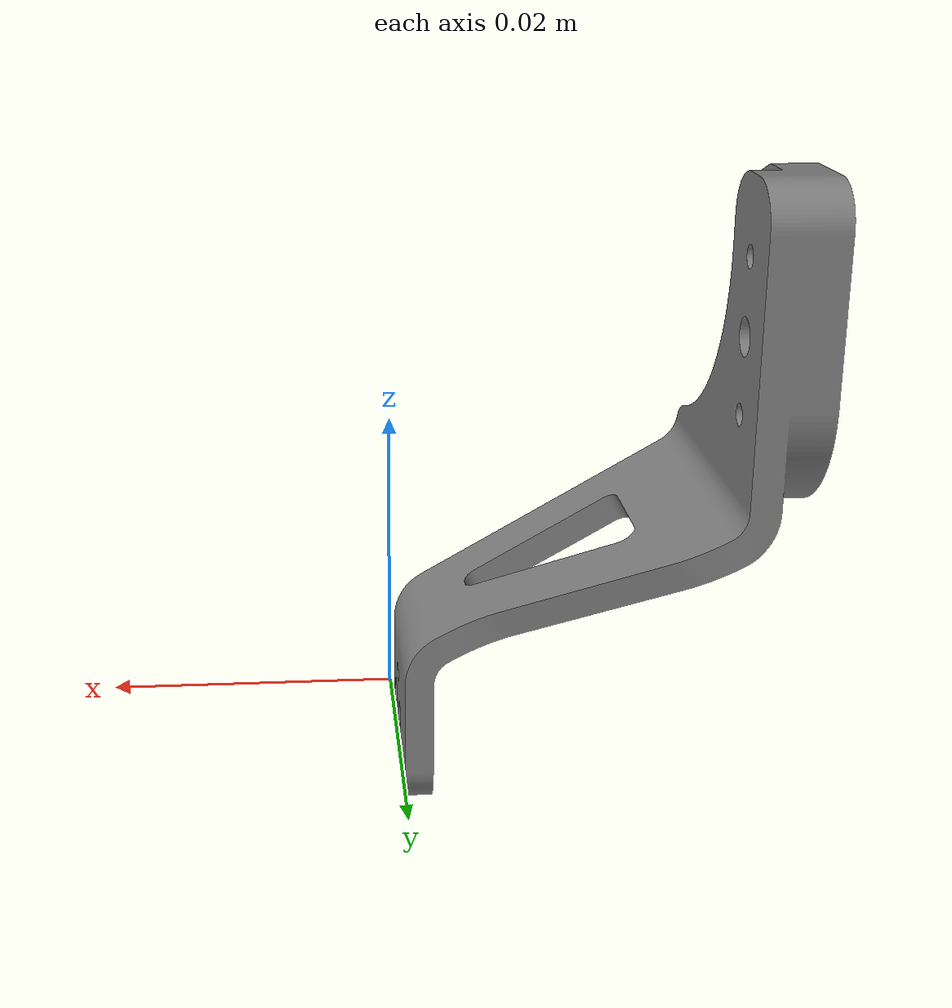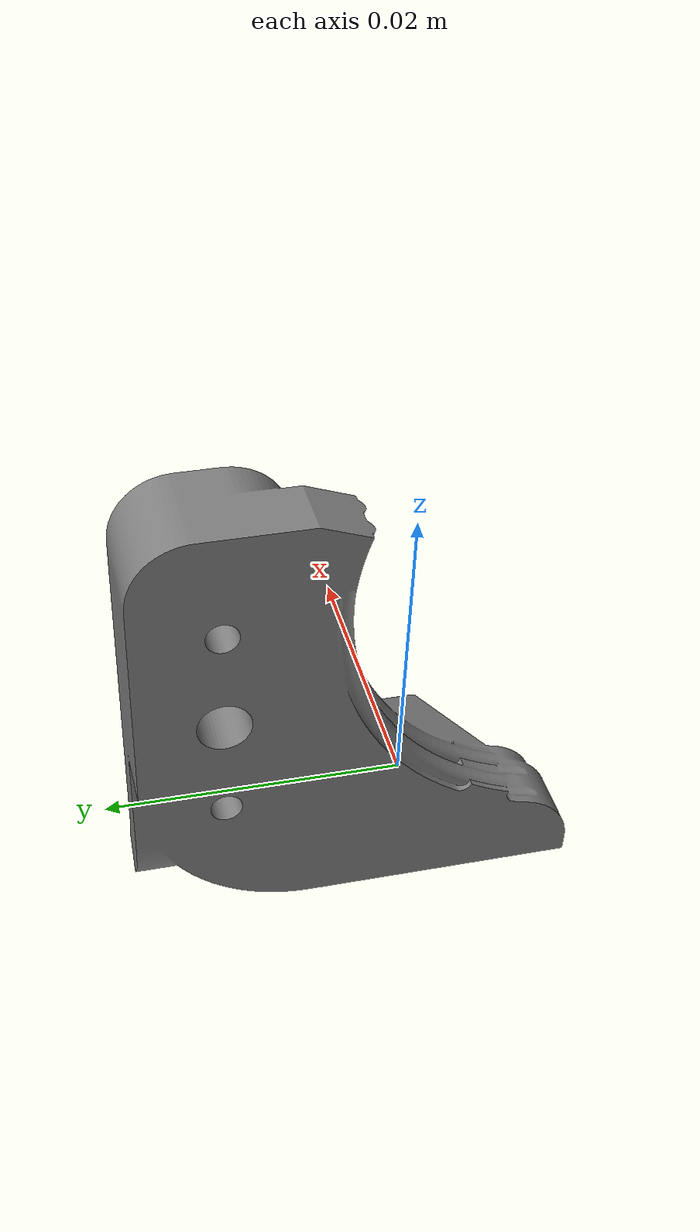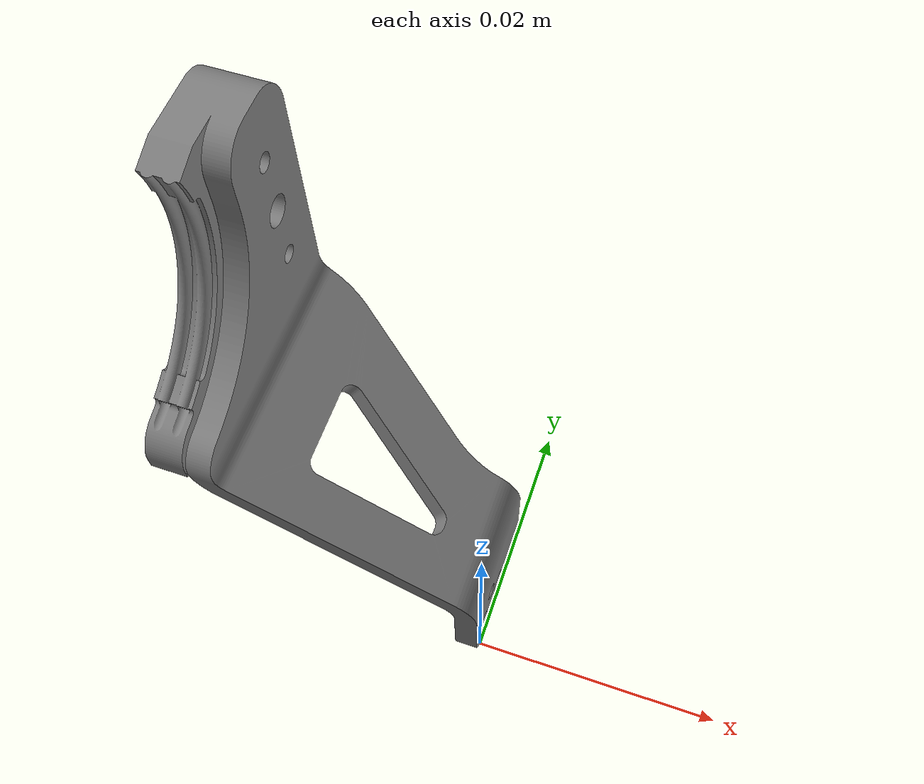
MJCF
<mujoco model="finger1">
  <default>
    <default class="visual">
      <geom group="2" type="mesh" contype="0" conaffinity="0"/>
    </default>
    <default class="collision">
      <geom group="3" type="mesh"/>
    </default>
  </default>
  <asset>
    <mesh file="finger1.obj"/>
  </asset>
  <worldbody>
    <body name="finger1">
      <geom mesh="finger1" class="visual"/>
      <geom mesh="finger1" class="collision"/>
    </body>
  </worldbody>
</mujoco>
